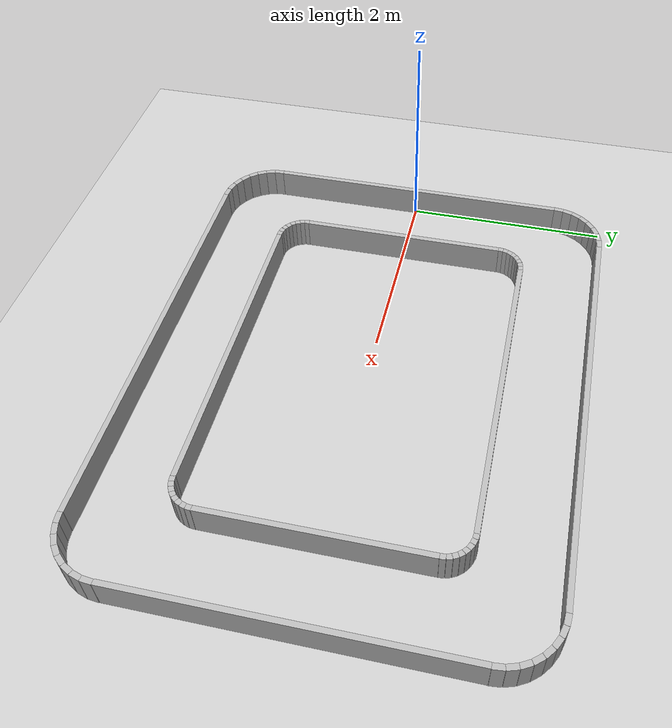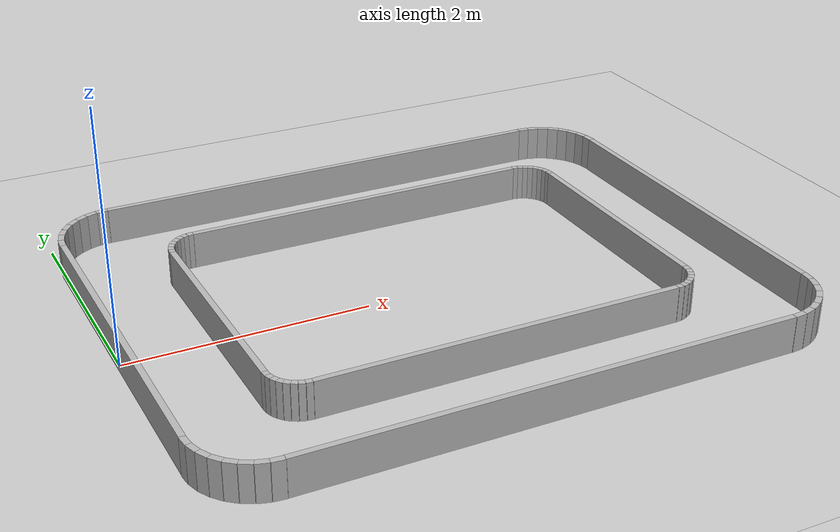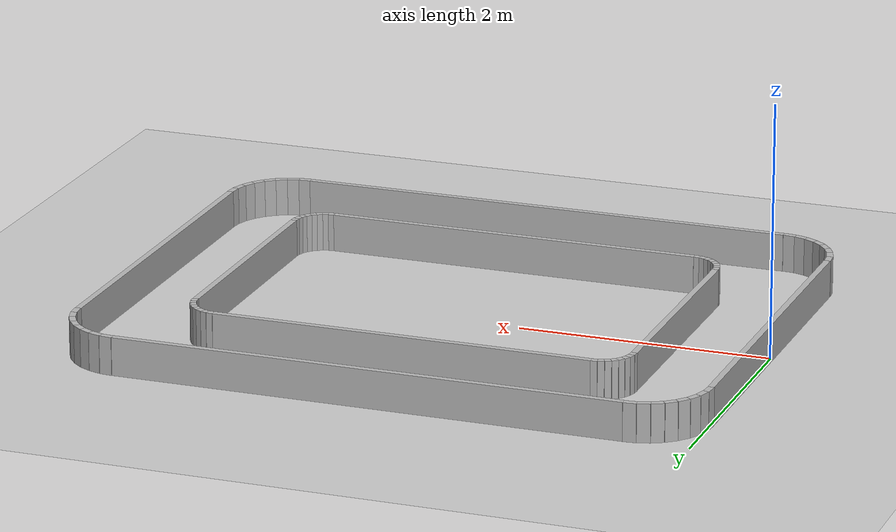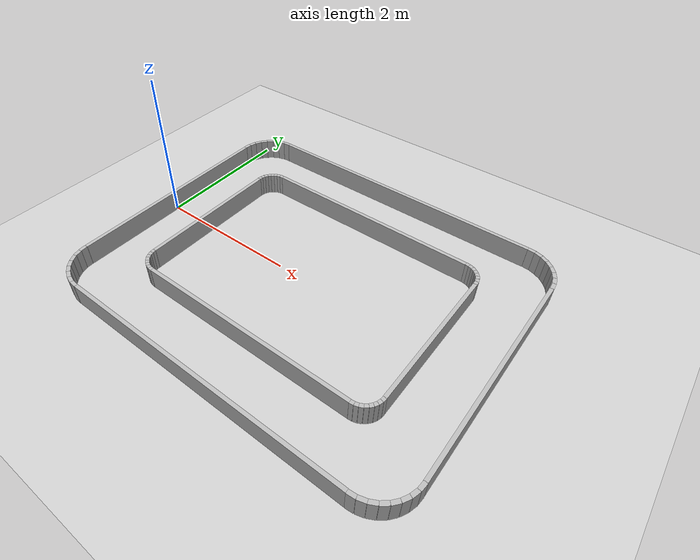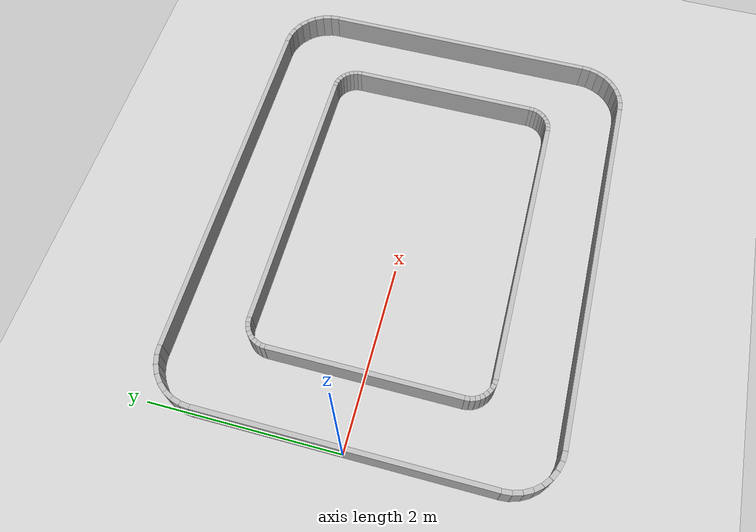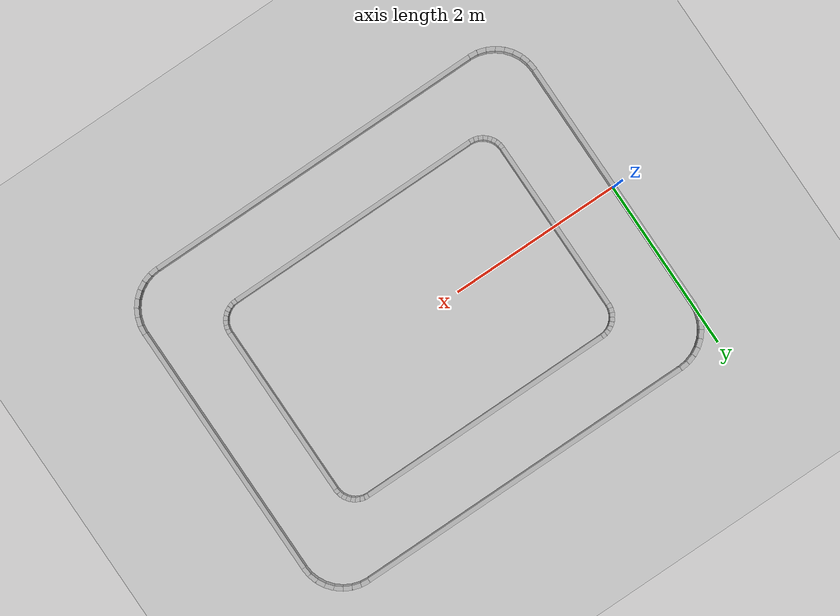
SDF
<?xml version="1.0" ?>
<sdf version="1.6">
  <world name="city_track">

    <physics name="1ms" type="ignored">
      <max_step_size>0.001</max_step_size>
      <real_time_factor>1.0</real_time_factor>
    </physics>

    <plugin filename="gz-sim-physics-system" name="gz::sim::systems::Physics"/>
    <plugin filename="gz-sim-scene-broadcaster-system" name="gz::sim::systems::SceneBroadcaster"/>
    <plugin filename="gz-sim-user-commands-system" name="gz::sim::systems::UserCommands"/>

    <light name="sun" type="directional">
      <cast_shadows>true</cast_shadows>
      <pose>0 0 10 0 0 0</pose>
      <diffuse>0.8 0.8 0.8 1</diffuse>
      <specular>0.2 0.2 0.2 1</specular>
      <direction>-0.5 0.1 -0.9</direction>
    </light>

    <model name="ground_plane">
      <static>true</static>
      <link name="link">
        <collision name="collision">
          <geometry><plane><normal>0 0 1</normal><size>100 100</size></plane></geometry>
        </collision>
        <visual name="visual">
          <geometry><plane><normal>0 0 1</normal><size>100 100</size></plane></geometry>
          <material><ambient>0.8 0.8 0.8 1</ambient><diffuse>0.8 0.8 0.8 1</diffuse></material>
        </visual>
      </link>
    </model>

    <model name="outer_top">
      <static>true</static>
      <pose>2.5000 2.0000 0.150 0 0 0.0000</pose>
      <link name="link">
        <visual name="v">
          <geometry><box><size>4.0000 0.0500 0.300</size></box></geometry>
        </visual>
        <collision name="c">
          <geometry><box><size>4.0000 0.0500 0.300</size></box></geometry>
        </collision>
      </link>
    </model>
    <model name="outer_bottom">
      <static>true</static>
      <pose>2.5000 -2.0000 0.150 0 0 0.0000</pose>
      <link name="link">
        <visual name="v">
          <geometry><box><size>4.0000 0.0500 0.300</size></box></geometry>
        </visual>
        <collision name="c">
          <geometry><box><size>4.0000 0.0500 0.300</size></box></geometry>
        </collision>
      </link>
    </model>
    <model name="outer_left">
      <static>true</static>
      <pose>0.0000 0.0000 0.150 0 0 1.5708</pose>
      <link name="link">
        <visual name="v">
          <geometry><box><size>3.0000 0.0500 0.300</size></box></geometry>
        </visual>
        <collision name="c">
          <geometry><box><size>3.0000 0.0500 0.300</size></box></geometry>
        </collision>
      </link>
    </model>
    <model name="outer_right">
      <static>true</static>
      <pose>5.0000 0.0000 0.150 0 0 1.5708</pose>
      <link name="link">
        <visual name="v">
          <geometry><box><size>3.0000 0.0500 0.300</size></box></geometry>
        </visual>
        <collision name="c">
          <geometry><box><size>3.0000 0.0500 0.300</size></box></geometry>
        </collision>
      </link>
    </model>
    <model name="outer_corner_tl_0">
      <static>true</static>
      <pose>0.4510 1.9976 0.150 0 0 3.2398</pose>
      <link name="link">
        <visual name="v">
          <geometry><box><size>0.1002 0.0500 0.300</size></box></geometry>
        </visual>
        <collision name="c">
          <geometry><box><size>0.1002 0.0500 0.300</size></box></geometry>
        </collision>
      </link>
    </model>
    <model name="outer_corner_tl_1">
      <static>true</static>
      <pose>0.3549 1.9785 0.150 0 0 3.4361</pose>
      <link name="link">
        <visual name="v">
          <geometry><box><size>0.1002 0.0500 0.300</size></box></geometry>
        </visual>
        <collision name="c">
          <geometry><box><size>0.1002 0.0500 0.300</size></box></geometry>
        </collision>
      </link>
    </model>
    <model name="outer_corner_tl_2">
      <static>true</static>
      <pose>0.2643 1.9410 0.150 0 0 3.6325</pose>
      <link name="link">
        <visual name="v">
          <geometry><box><size>0.1002 0.0500 0.300</size></box></geometry>
        </visual>
        <collision name="c">
          <geometry><box><size>0.1002 0.0500 0.300</size></box></geometry>
        </collision>
      </link>
    </model>
    <model name="outer_corner_tl_3">
      <static>true</static>
      <pose>0.1828 1.8865 0.150 0 0 3.8288</pose>
      <link name="link">
        <visual name="v">
          <geometry><box><size>0.1002 0.0500 0.300</size></box></geometry>
        </visual>
        <collision name="c">
          <geometry><box><size>0.1002 0.0500 0.300</size></box></geometry>
        </collision>
      </link>
    </model>
    <model name="outer_corner_tl_4">
      <static>true</static>
      <pose>0.1135 1.8172 0.150 0 0 4.0252</pose>
      <link name="link">
        <visual name="v">
          <geometry><box><size>0.1002 0.0500 0.300</size></box></geometry>
        </visual>
        <collision name="c">
          <geometry><box><size>0.1002 0.0500 0.300</size></box></geometry>
        </collision>
      </link>
    </model>
    <model name="outer_corner_tl_5">
      <static>true</static>
      <pose>0.0590 1.7357 0.150 0 0 4.2215</pose>
      <link name="link">
        <visual name="v">
          <geometry><box><size>0.1002 0.0500 0.300</size></box></geometry>
        </visual>
        <collision name="c">
          <geometry><box><size>0.1002 0.0500 0.300</size></box></geometry>
        </collision>
      </link>
    </model>
    <model name="outer_corner_tl_6">
      <static>true</static>
      <pose>0.0215 1.6451 0.150 0 0 4.4179</pose>
      <link name="link">
        <visual name="v">
          <geometry><box><size>0.1002 0.0500 0.300</size></box></geometry>
        </visual>
        <collision name="c">
          <geometry><box><size>0.1002 0.0500 0.300</size></box></geometry>
        </collision>
      </link>
    </model>
    <model name="outer_corner_tl_7">
      <static>true</static>
      <pose>0.0024 1.5490 0.150 0 0 4.6142</pose>
      <link name="link">
        <visual name="v">
          <geometry><box><size>0.1002 0.0500 0.300</size></box></geometry>
        </visual>
        <collision name="c">
          <geometry><box><size>0.1002 0.0500 0.300</size></box></geometry>
        </collision>
      </link>
    </model>
    <model name="outer_corner_tr_0">
      <static>true</static>
      <pose>4.9976 1.5490 0.150 0 0 1.6690</pose>
      <link name="link">
        <visual name="v">
          <geometry><box><size>0.1002 0.0500 0.300</size></box></geometry>
        </visual>
        <collision name="c">
          <geometry><box><size>0.1002 0.0500 0.300</size></box></geometry>
        </collision>
      </link>
    </model>
    <model name="outer_corner_tr_1">
      <static>true</static>
      <pose>4.9785 1.6451 0.150 0 0 1.8653</pose>
      <link name="link">
        <visual name="v">
          <geometry><box><size>0.1002 0.0500 0.300</size></box></geometry>
        </visual>
        <collision name="c">
          <geometry><box><size>0.1002 0.0500 0.300</size></box></geometry>
        </collision>
      </link>
    </model>
    <model name="outer_corner_tr_2">
      <static>true</static>
      <pose>4.9410 1.7357 0.150 0 0 2.0617</pose>
      <link name="link">
        <visual name="v">
          <geometry><box><size>0.1002 0.0500 0.300</size></box></geometry>
        </visual>
        <collision name="c">
          <geometry><box><size>0.1002 0.0500 0.300</size></box></geometry>
        </collision>
      </link>
    </model>
    <model name="outer_corner_tr_3">
      <static>true</static>
      <pose>4.8865 1.8172 0.150 0 0 2.2580</pose>
      <link name="link">
        <visual name="v">
          <geometry><box><size>0.1002 0.0500 0.300</size></box></geometry>
        </visual>
        <collision name="c">
          <geometry><box><size>0.1002 0.0500 0.300</size></box></geometry>
        </collision>
      </link>
    </model>
    <model name="outer_corner_tr_4">
      <static>true</static>
      <pose>4.8172 1.8865 0.150 0 0 2.4544</pose>
      <link name="link">
        <visual name="v">
          <geometry><box><size>0.1002 0.0500 0.300</size></box></geometry>
        </visual>
        <collision name="c">
          <geometry><box><size>0.1002 0.0500 0.300</size></box></geometry>
        </collision>
      </link>
    </model>
    <model name="outer_corner_tr_5">
      <static>true</static>
      <pose>4.7357 1.9410 0.150 0 0 2.6507</pose>
      <link name="link">
        <visual name="v">
          <geometry><box><size>0.1002 0.0500 0.300</size></box></geometry>
        </visual>
        <collision name="c">
          <geometry><box><size>0.1002 0.0500 0.300</size></box></geometry>
        </collision>
      </link>
    </model>
    <model name="outer_corner_tr_6">
      <static>true</static>
      <pose>4.6451 1.9785 0.150 0 0 2.8471</pose>
      <link name="link">
        <visual name="v">
          <geometry><box><size>0.1002 0.0500 0.300</size></box></geometry>
        </visual>
        <collision name="c">
          <geometry><box><size>0.1002 0.0500 0.300</size></box></geometry>
        </collision>
      </link>
    </model>
    <model name="outer_corner_tr_7">
      <static>true</static>
      <pose>4.5490 1.9976 0.150 0 0 3.0434</pose>
      <link name="link">
        <visual name="v">
          <geometry><box><size>0.1002 0.0500 0.300</size></box></geometry>
        </visual>
        <collision name="c">
          <geometry><box><size>0.1002 0.0500 0.300</size></box></geometry>
        </collision>
      </link>
    </model>
    <model name="outer_corner_bl_0">
      <static>true</static>
      <pose>0.0024 -1.5490 0.150 0 0 4.8106</pose>
      <link name="link">
        <visual name="v">
          <geometry><box><size>0.1002 0.0500 0.300</size></box></geometry>
        </visual>
        <collision name="c">
          <geometry><box><size>0.1002 0.0500 0.300</size></box></geometry>
        </collision>
      </link>
    </model>
    <model name="outer_corner_bl_1">
      <static>true</static>
      <pose>0.0215 -1.6451 0.150 0 0 5.0069</pose>
      <link name="link">
        <visual name="v">
          <geometry><box><size>0.1002 0.0500 0.300</size></box></geometry>
        </visual>
        <collision name="c">
          <geometry><box><size>0.1002 0.0500 0.300</size></box></geometry>
        </collision>
      </link>
    </model>
    <model name="outer_corner_bl_2">
      <static>true</static>
      <pose>0.0590 -1.7357 0.150 0 0 5.2033</pose>
      <link name="link">
        <visual name="v">
          <geometry><box><size>0.1002 0.0500 0.300</size></box></geometry>
        </visual>
        <collision name="c">
          <geometry><box><size>0.1002 0.0500 0.300</size></box></geometry>
        </collision>
      </link>
    </model>
    <model name="outer_corner_bl_3">
      <static>true</static>
      <pose>0.1135 -1.8172 0.150 0 0 5.3996</pose>
      <link name="link">
        <visual name="v">
          <geometry><box><size>0.1002 0.0500 0.300</size></box></geometry>
        </visual>
        <collision name="c">
          <geometry><box><size>0.1002 0.0500 0.300</size></box></geometry>
        </collision>
      </link>
    </model>
    <model name="outer_corner_bl_4">
      <static>true</static>
      <pose>0.1828 -1.8865 0.150 0 0 5.5960</pose>
      <link name="link">
        <visual name="v">
          <geometry><box><size>0.1002 0.0500 0.300</size></box></geometry>
        </visual>
        <collision name="c">
          <geometry><box><size>0.1002 0.0500 0.300</size></box></geometry>
        </collision>
      </link>
    </model>
    <model name="outer_corner_bl_5">
      <static>true</static>
      <pose>0.2643 -1.9410 0.150 0 0 5.7923</pose>
      <link name="link">
        <visual name="v">
          <geometry><box><size>0.1002 0.0500 0.300</size></box></geometry>
        </visual>
        <collision name="c">
          <geometry><box><size>0.1002 0.0500 0.300</size></box></geometry>
        </collision>
      </link>
    </model>
    <model name="outer_corner_bl_6">
      <static>true</static>
      <pose>0.3549 -1.9785 0.150 0 0 5.9887</pose>
      <link name="link">
        <visual name="v">
          <geometry><box><size>0.1002 0.0500 0.300</size></box></geometry>
        </visual>
        <collision name="c">
          <geometry><box><size>0.1002 0.0500 0.300</size></box></geometry>
        </collision>
      </link>
    </model>
    <model name="outer_corner_bl_7">
      <static>true</static>
      <pose>0.4510 -1.9976 0.150 0 0 6.1850</pose>
      <link name="link">
        <visual name="v">
          <geometry><box><size>0.1002 0.0500 0.300</size></box></geometry>
        </visual>
        <collision name="c">
          <geometry><box><size>0.1002 0.0500 0.300</size></box></geometry>
        </collision>
      </link>
    </model>
    <model name="outer_corner_br_0">
      <static>true</static>
      <pose>4.5490 -1.9976 0.150 0 0 6.3814</pose>
      <link name="link">
        <visual name="v">
          <geometry><box><size>0.1002 0.0500 0.300</size></box></geometry>
        </visual>
        <collision name="c">
          <geometry><box><size>0.1002 0.0500 0.300</size></box></geometry>
        </collision>
      </link>
    </model>
    <model name="outer_corner_br_1">
      <static>true</static>
      <pose>4.6451 -1.9785 0.150 0 0 6.5777</pose>
      <link name="link">
        <visual name="v">
          <geometry><box><size>0.1002 0.0500 0.300</size></box></geometry>
        </visual>
        <collision name="c">
          <geometry><box><size>0.1002 0.0500 0.300</size></box></geometry>
        </collision>
      </link>
    </model>
    <model name="outer_corner_br_2">
      <static>true</static>
      <pose>4.7357 -1.9410 0.150 0 0 6.7741</pose>
      <link name="link">
        <visual name="v">
          <geometry><box><size>0.1002 0.0500 0.300</size></box></geometry>
        </visual>
        <collision name="c">
          <geometry><box><size>0.1002 0.0500 0.300</size></box></geometry>
        </collision>
      </link>
    </model>
    <model name="outer_corner_br_3">
      <static>true</static>
      <pose>4.8172 -1.8865 0.150 0 0 6.9704</pose>
      <link name="link">
        <visual name="v">
          <geometry><box><size>0.1002 0.0500 0.300</size></box></geometry>
        </visual>
        <collision name="c">
          <geometry><box><size>0.1002 0.0500 0.300</size></box></geometry>
        </collision>
      </link>
    </model>
    <model name="outer_corner_br_4">
      <static>true</static>
      <pose>4.8865 -1.8172 0.150 0 0 7.1668</pose>
      <link name="link">
        <visual name="v">
          <geometry><box><size>0.1002 0.0500 0.300</size></box></geometry>
        </visual>
        <collision name="c">
          <geometry><box><size>0.1002 0.0500 0.300</size></box></geometry>
        </collision>
      </link>
    </model>
    <model name="outer_corner_br_5">
      <static>true</static>
      <pose>4.9410 -1.7357 0.150 0 0 7.3631</pose>
      <link name="link">
        <visual name="v">
          <geometry><box><size>0.1002 0.0500 0.300</size></box></geometry>
        </visual>
        <collision name="c">
          <geometry><box><size>0.1002 0.0500 0.300</size></box></geometry>
        </collision>
      </link>
    </model>
    <model name="outer_corner_br_6">
      <static>true</static>
      <pose>4.9785 -1.6451 0.150 0 0 7.5595</pose>
      <link name="link">
        <visual name="v">
          <geometry><box><size>0.1002 0.0500 0.300</size></box></geometry>
        </visual>
        <collision name="c">
          <geometry><box><size>0.1002 0.0500 0.300</size></box></geometry>
        </collision>
      </link>
    </model>
    <model name="outer_corner_br_7">
      <static>true</static>
      <pose>4.9976 -1.5490 0.150 0 0 7.7558</pose>
      <link name="link">
        <visual name="v">
          <geometry><box><size>0.1002 0.0500 0.300</size></box></geometry>
        </visual>
        <collision name="c">
          <geometry><box><size>0.1002 0.0500 0.300</size></box></geometry>
        </collision>
      </link>
    </model>
    <model name="inner_top">
      <static>true</static>
      <pose>2.5000 1.2500 0.150 0 0 0.0000</pose>
      <link name="link">
        <visual name="v">
          <geometry><box><size>3.0000 0.0500 0.300</size></box></geometry>
        </visual>
        <collision name="c">
          <geometry><box><size>3.0000 0.0500 0.300</size></box></geometry>
        </collision>
      </link>
    </model>
    <model name="inner_bottom">
      <static>true</static>
      <pose>2.5000 -1.2500 0.150 0 0 0.0000</pose>
      <link name="link">
        <visual name="v">
          <geometry><box><size>3.0000 0.0500 0.300</size></box></geometry>
        </visual>
        <collision name="c">
          <geometry><box><size>3.0000 0.0500 0.300</size></box></geometry>
        </collision>
      </link>
    </model>
    <model name="inner_left">
      <static>true</static>
      <pose>0.7500 0.0000 0.150 0 0 1.5708</pose>
      <link name="link">
        <visual name="v">
          <geometry><box><size>2.0000 0.0500 0.300</size></box></geometry>
        </visual>
        <collision name="c">
          <geometry><box><size>2.0000 0.0500 0.300</size></box></geometry>
        </collision>
      </link>
    </model>
    <model name="inner_right">
      <static>true</static>
      <pose>4.2500 0.0000 0.150 0 0 1.5708</pose>
      <link name="link">
        <visual name="v">
          <geometry><box><size>2.0000 0.0500 0.300</size></box></geometry>
        </visual>
        <collision name="c">
          <geometry><box><size>2.0000 0.0500 0.300</size></box></geometry>
        </collision>
      </link>
    </model>
    <model name="inner_corner_tl_0">
      <static>true</static>
      <pose>0.9755 1.2488 0.150 0 0 3.2398</pose>
      <link name="link">
        <visual name="v">
          <geometry><box><size>0.0511 0.0500 0.300</size></box></geometry>
        </visual>
        <collision name="c">
          <geometry><box><size>0.0511 0.0500 0.300</size></box></geometry>
        </collision>
      </link>
    </model>
    <model name="inner_corner_tl_1">
      <static>true</static>
      <pose>0.9274 1.2392 0.150 0 0 3.4361</pose>
      <link name="link">
        <visual name="v">
          <geometry><box><size>0.0511 0.0500 0.300</size></box></geometry>
        </visual>
        <collision name="c">
          <geometry><box><size>0.0511 0.0500 0.300</size></box></geometry>
        </collision>
      </link>
    </model>
    <model name="inner_corner_tl_2">
      <static>true</static>
      <pose>0.8822 1.2205 0.150 0 0 3.6325</pose>
      <link name="link">
        <visual name="v">
          <geometry><box><size>0.0511 0.0500 0.300</size></box></geometry>
        </visual>
        <collision name="c">
          <geometry><box><size>0.0511 0.0500 0.300</size></box></geometry>
        </collision>
      </link>
    </model>
    <model name="inner_corner_tl_3">
      <static>true</static>
      <pose>0.8414 1.1933 0.150 0 0 3.8288</pose>
      <link name="link">
        <visual name="v">
          <geometry><box><size>0.0511 0.0500 0.300</size></box></geometry>
        </visual>
        <collision name="c">
          <geometry><box><size>0.0511 0.0500 0.300</size></box></geometry>
        </collision>
      </link>
    </model>
    <model name="inner_corner_tl_4">
      <static>true</static>
      <pose>0.8067 1.1586 0.150 0 0 4.0252</pose>
      <link name="link">
        <visual name="v">
          <geometry><box><size>0.0511 0.0500 0.300</size></box></geometry>
        </visual>
        <collision name="c">
          <geometry><box><size>0.0511 0.0500 0.300</size></box></geometry>
        </collision>
      </link>
    </model>
    <model name="inner_corner_tl_5">
      <static>true</static>
      <pose>0.7795 1.1178 0.150 0 0 4.2215</pose>
      <link name="link">
        <visual name="v">
          <geometry><box><size>0.0511 0.0500 0.300</size></box></geometry>
        </visual>
        <collision name="c">
          <geometry><box><size>0.0511 0.0500 0.300</size></box></geometry>
        </collision>
      </link>
    </model>
    <model name="inner_corner_tl_6">
      <static>true</static>
      <pose>0.7608 1.0726 0.150 0 0 4.4179</pose>
      <link name="link">
        <visual name="v">
          <geometry><box><size>0.0511 0.0500 0.300</size></box></geometry>
        </visual>
        <collision name="c">
          <geometry><box><size>0.0511 0.0500 0.300</size></box></geometry>
        </collision>
      </link>
    </model>
    <model name="inner_corner_tl_7">
      <static>true</static>
      <pose>0.7512 1.0245 0.150 0 0 4.6142</pose>
      <link name="link">
        <visual name="v">
          <geometry><box><size>0.0511 0.0500 0.300</size></box></geometry>
        </visual>
        <collision name="c">
          <geometry><box><size>0.0511 0.0500 0.300</size></box></geometry>
        </collision>
      </link>
    </model>
    <model name="inner_corner_tr_0">
      <static>true</static>
      <pose>4.2488 1.0245 0.150 0 0 1.6690</pose>
      <link name="link">
        <visual name="v">
          <geometry><box><size>0.0511 0.0500 0.300</size></box></geometry>
        </visual>
        <collision name="c">
          <geometry><box><size>0.0511 0.0500 0.300</size></box></geometry>
        </collision>
      </link>
    </model>
    <model name="inner_corner_tr_1">
      <static>true</static>
      <pose>4.2392 1.0726 0.150 0 0 1.8653</pose>
      <link name="link">
        <visual name="v">
          <geometry><box><size>0.0511 0.0500 0.300</size></box></geometry>
        </visual>
        <collision name="c">
          <geometry><box><size>0.0511 0.0500 0.300</size></box></geometry>
        </collision>
      </link>
    </model>
    <model name="inner_corner_tr_2">
      <static>true</static>
      <pose>4.2205 1.1178 0.150 0 0 2.0617</pose>
      <link name="link">
        <visual name="v">
          <geometry><box><size>0.0511 0.0500 0.300</size></box></geometry>
        </visual>
        <collision name="c">
          <geometry><box><size>0.0511 0.0500 0.300</size></box></geometry>
        </collision>
      </link>
    </model>
    <model name="inner_corner_tr_3">
      <static>true</static>
      <pose>4.1933 1.1586 0.150 0 0 2.2580</pose>
      <link name="link">
        <visual name="v">
          <geometry><box><size>0.0511 0.0500 0.300</size></box></geometry>
        </visual>
        <collision name="c">
          <geometry><box><size>0.0511 0.0500 0.300</size></box></geometry>
        </collision>
      </link>
    </model>
    <model name="inner_corner_tr_4">
      <static>true</static>
      <pose>4.1586 1.1933 0.150 0 0 2.4544</pose>
      <link name="link">
        <visual name="v">
          <geometry><box><size>0.0511 0.0500 0.300</size></box></geometry>
        </visual>
        <collision name="c">
          <geometry><box><size>0.0511 0.0500 0.300</size></box></geometry>
        </collision>
      </link>
    </model>
    <model name="inner_corner_tr_5">
      <static>true</static>
      <pose>4.1178 1.2205 0.150 0 0 2.6507</pose>
      <link name="link">
        <visual name="v">
          <geometry><box><size>0.0511 0.0500 0.300</size></box></geometry>
        </visual>
        <collision name="c">
          <geometry><box><size>0.0511 0.0500 0.300</size></box></geometry>
        </collision>
      </link>
    </model>
    <model name="inner_corner_tr_6">
      <static>true</static>
      <pose>4.0726 1.2392 0.150 0 0 2.8471</pose>
      <link name="link">
        <visual name="v">
          <geometry><box><size>0.0511 0.0500 0.300</size></box></geometry>
        </visual>
        <collision name="c">
          <geometry><box><size>0.0511 0.0500 0.300</size></box></geometry>
        </collision>
      </link>
    </model>
    <model name="inner_corner_tr_7">
      <static>true</static>
      <pose>4.0245 1.2488 0.150 0 0 3.0434</pose>
      <link name="link">
        <visual name="v">
          <geometry><box><size>0.0511 0.0500 0.300</size></box></geometry>
        </visual>
        <collision name="c">
          <geometry><box><size>0.0511 0.0500 0.300</size></box></geometry>
        </collision>
      </link>
    </model>
    <model name="inner_corner_bl_0">
      <static>true</static>
      <pose>0.7512 -1.0245 0.150 0 0 4.8106</pose>
      <link name="link">
        <visual name="v">
          <geometry><box><size>0.0511 0.0500 0.300</size></box></geometry>
        </visual>
        <collision name="c">
          <geometry><box><size>0.0511 0.0500 0.300</size></box></geometry>
        </collision>
      </link>
    </model>
    <model name="inner_corner_bl_1">
      <static>true</static>
      <pose>0.7608 -1.0726 0.150 0 0 5.0069</pose>
      <link name="link">
        <visual name="v">
          <geometry><box><size>0.0511 0.0500 0.300</size></box></geometry>
        </visual>
        <collision name="c">
          <geometry><box><size>0.0511 0.0500 0.300</size></box></geometry>
        </collision>
      </link>
    </model>
    <model name="inner_corner_bl_2">
      <static>true</static>
      <pose>0.7795 -1.1178 0.150 0 0 5.2033</pose>
      <link name="link">
        <visual name="v">
          <geometry><box><size>0.0511 0.0500 0.300</size></box></geometry>
        </visual>
        <collision name="c">
          <geometry><box><size>0.0511 0.0500 0.300</size></box></geometry>
        </collision>
      </link>
    </model>
    <model name="inner_corner_bl_3">
      <static>true</static>
      <pose>0.8067 -1.1586 0.150 0 0 5.3996</pose>
      <link name="link">
        <visual name="v">
          <geometry><box><size>0.0511 0.0500 0.300</size></box></geometry>
        </visual>
        <collision name="c">
          <geometry><box><size>0.0511 0.0500 0.300</size></box></geometry>
        </collision>
      </link>
    </model>
    <model name="inner_corner_bl_4">
      <static>true</static>
      <pose>0.8414 -1.1933 0.150 0 0 5.5960</pose>
      <link name="link">
        <visual name="v">
          <geometry><box><size>0.0511 0.0500 0.300</size></box></geometry>
        </visual>
        <collision name="c">
          <geometry><box><size>0.0511 0.0500 0.300</size></box></geometry>
        </collision>
      </link>
    </model>
    <model name="inner_corner_bl_5">
      <static>true</static>
      <pose>0.8822 -1.2205 0.150 0 0 5.7923</pose>
      <link name="link">
        <visual name="v">
          <geometry><box><size>0.0511 0.0500 0.300</size></box></geometry>
        </visual>
        <collision name="c">
          <geometry><box><size>0.0511 0.0500 0.300</size></box></geometry>
        </collision>
      </link>
    </model>
    <model name="inner_corner_bl_6">
      <static>true</static>
      <pose>0.9274 -1.2392 0.150 0 0 5.9887</pose>
      <link name="link">
        <visual name="v">
          <geometry><box><size>0.0511 0.0500 0.300</size></box></geometry>
        </visual>
        <collision name="c">
          <geometry><box><size>0.0511 0.0500 0.300</size></box></geometry>
        </collision>
      </link>
    </model>
    <model name="inner_corner_bl_7">
      <static>true</static>
      <pose>0.9755 -1.2488 0.150 0 0 6.1850</pose>
      <link name="link">
        <visual name="v">
          <geometry><box><size>0.0511 0.0500 0.300</size></box></geometry>
        </visual>
        <collision name="c">
          <geometry><box><size>0.0511 0.0500 0.300</size></box></geometry>
        </collision>
      </link>
    </model>
    <model name="inner_corner_br_0">
      <static>true</static>
      <pose>4.0245 -1.2488 0.150 0 0 6.3814</pose>
      <link name="link">
        <visual name="v">
          <geometry><box><size>0.0511 0.0500 0.300</size></box></geometry>
        </visual>
        <collision name="c">
          <geometry><box><size>0.0511 0.0500 0.300</size></box></geometry>
        </collision>
      </link>
    </model>
    <model name="inner_corner_br_1">
      <static>true</static>
      <pose>4.0726 -1.2392 0.150 0 0 6.5777</pose>
      <link name="link">
        <visual name="v">
          <geometry><box><size>0.0511 0.0500 0.300</size></box></geometry>
        </visual>
        <collision name="c">
          <geometry><box><size>0.0511 0.0500 0.300</size></box></geometry>
        </collision>
      </link>
    </model>
    <model name="inner_corner_br_2">
      <static>true</static>
      <pose>4.1178 -1.2205 0.150 0 0 6.7741</pose>
      <link name="link">
        <visual name="v">
          <geometry><box><size>0.0511 0.0500 0.300</size></box></geometry>
        </visual>
        <collision name="c">
          <geometry><box><size>0.0511 0.0500 0.300</size></box></geometry>
        </collision>
      </link>
    </model>
    <model name="inner_corner_br_3">
      <static>true</static>
      <pose>4.1586 -1.1933 0.150 0 0 6.9704</pose>
      <link name="link">
        <visual name="v">
          <geometry><box><size>0.0511 0.0500 0.300</size></box></geometry>
        </visual>
        <collision name="c">
          <geometry><box><size>0.0511 0.0500 0.300</size></box></geometry>
        </collision>
      </link>
    </model>
    <model name="inner_corner_br_4">
      <static>true</static>
      <pose>4.1933 -1.1586 0.150 0 0 7.1668</pose>
      <link name="link">
        <visual name="v">
          <geometry><box><size>0.0511 0.0500 0.300</size></box></geometry>
        </visual>
        <collision name="c">
          <geometry><box><size>0.0511 0.0500 0.300</size></box></geometry>
        </collision>
      </link>
    </model>
    <model name="inner_corner_br_5">
      <static>true</static>
      <pose>4.2205 -1.1178 0.150 0 0 7.3631</pose>
      <link name="link">
        <visual name="v">
          <geometry><box><size>0.0511 0.0500 0.300</size></box></geometry>
        </visual>
        <collision name="c">
          <geometry><box><size>0.0511 0.0500 0.300</size></box></geometry>
        </collision>
      </link>
    </model>
    <model name="inner_corner_br_6">
      <static>true</static>
      <pose>4.2392 -1.0726 0.150 0 0 7.5595</pose>
      <link name="link">
        <visual name="v">
          <geometry><box><size>0.0511 0.0500 0.300</size></box></geometry>
        </visual>
        <collision name="c">
          <geometry><box><size>0.0511 0.0500 0.300</size></box></geometry>
        </collision>
      </link>
    </model>
    <model name="inner_corner_br_7">
      <static>true</static>
      <pose>4.2488 -1.0245 0.150 0 0 7.7558</pose>
      <link name="link">
        <visual name="v">
          <geometry><box><size>0.0511 0.0500 0.300</size></box></geometry>
        </visual>
        <collision name="c">
          <geometry><box><size>0.0511 0.0500 0.300</size></box></geometry>
        </collision>
      </link>
    </model>
  </world>
</sdf>
